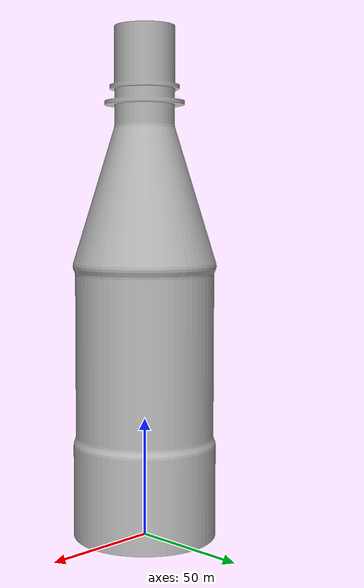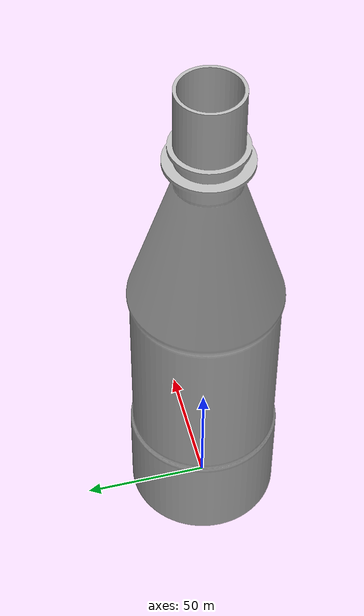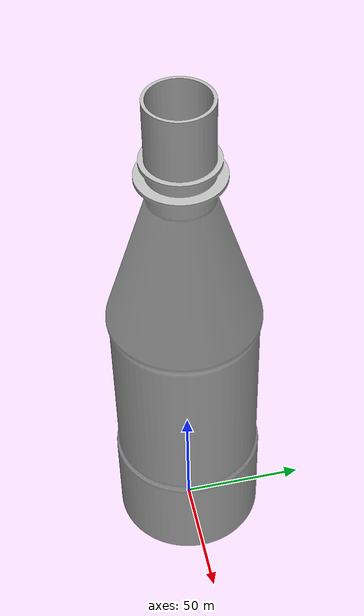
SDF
<?xml version='1.0'?>
<sdf version="1.4">
<model name="room1">
  <pose>0 0 0.5 0 0 0</pose>
    <link name="link">
      <inertial>
        <mass>1.0</mass>
        <inertia>
          <ixx>0.083</ixx>
          <ixy>0.0</ixy>
          <ixz>0.0</ixz>
          <iyy>0.083</iyy>
          <iyz>0.0</iyz>
          <izz>0.083</izz>
        </inertia>
      </inertial>
      <collision name="collision">
        <geometry>
          <mesh>
            <uri>model://Bottle-model-1-stl./bottle_model m.stl</uri>
          </mesh>
        </geometry>
      </collision>
      <visual name="visual">
        <geometry>
          <mesh>
            <uri>model://Bottle-model-1-stl./bottle_model m.stl</uri>
          </mesh>
        </geometry>
      </visual>
    </link>
  </model>
</sdf>
